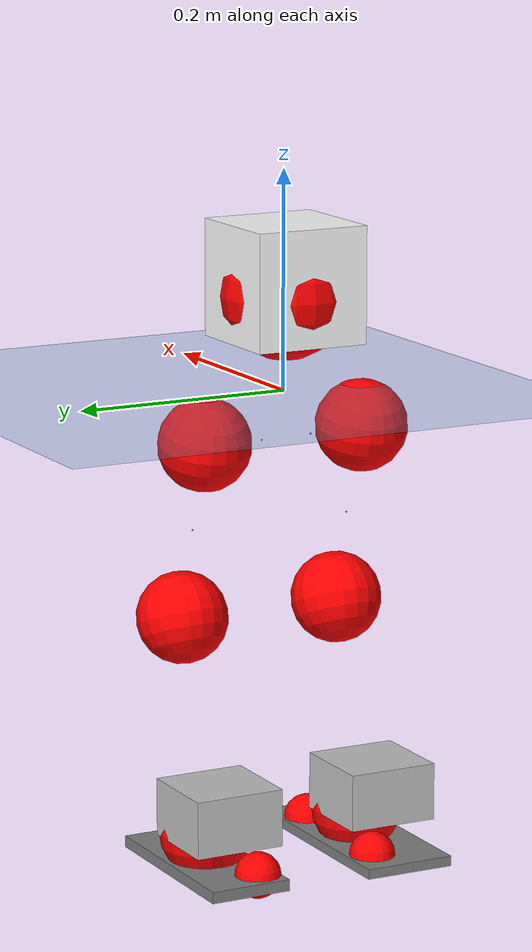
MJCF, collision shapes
<mujoco model="pi_12dof_release_v1">
  <compiler angle="radian" assetdir="assets" balanceinertia="true" inertiafromgeom="false"/>

  <option timestep="0.005" density="1.2" viscosity="2e-05"/>

  <size nkey="1"/>

  <visual>
    <quality shadowsize="8192"/>
    <map shadowclip="0.5"/>
  </visual>

  <default>
    <default class="/">
      <joint armature="0.01" damping="0.01" frictionloss="0.01"/>
      <geom contype="0" conaffinity="0" group="1" solref="-1000 -80"/>
      <site size="0.01 0.005 0.005" group="5"/>
      <general forcelimited="true" biastype="affine" gainprm="20" biasprm="0 -20 -0.5"/>
      <default class="foot">
        <geom size="0.0845 0.036 0.005" type="box" condim="6" group="4" priority="1" friction="0.9 0.2 0.2" solimp="0.015 1 0.005"/>
      </default>
      <default class="reward_collision_sphere">
        <geom group="5" rgba="1 0 0 1"/>
      </default>
    </default>
  </default>

  <asset>
    <texture type="skybox" colorspace="auto" name="//unnamed_texture_0" builtin="gradient" rgb1="0.95 0.95 0.95" rgb2="0.95 0.95 0.95" width="100" height="600"/>
    <texture type="2d" colorspace="auto" name="texplane" builtin="checker" rgb1="0.345 0.575 0.748" rgb2="0.345 0.575 0.748" markrgb="1 1 1" width="512" height="512"/>
    <material name="MatPlane" class="/" texture="texplane" texuniform="true" texrepeat="2 2" specular="0.9"/>
    <mesh name="baselink_1" class="/" file="baselink_1.STL"/>
    <mesh name="r_hip_pitch_link" class="/" file="r_hip_pitch_link.STL"/>
    <mesh name="r_hip_roll_link" class="/" file="r_hip_roll_link.STL"/>
    <mesh name="r_thigh_link" class="/" file="r_thigh_link.STL"/>
    <mesh name="r_calf_link" class="/" file="r_calf_link.STL"/>
    <mesh name="r_ankle_pitch_link" class="/" file="r_ankle_pitch_link.STL"/>
    <mesh name="r_ankle_roll_link" class="/" file="r_ankle_roll_link.STL"/>
    <mesh name="l_hip_pitch_link" class="/" file="l_hip_pitch_link.STL"/>
    <mesh name="l_hip_roll_link" class="/" file="l_hip_roll_link.STL"/>
    <mesh name="l_thigh_link" class="/" file="l_thigh_link.STL"/>
    <mesh name="l_calf_link" class="/" file="l_calf_link.STL"/>
    <mesh name="l_ankle_pitch_link" class="/" file="l_ankle_pitch_link.STL"/>
    <mesh name="l_ankle_roll_link" class="/" file="l_ankle_roll_link.STL"/>
  </asset>

  <worldbody>
    <geom name="floor" class="/" size="100 100 0.125" type="plane" group="0" material="MatPlane"/>
    <light name="toplight_shadow" class="/" pos="0 0 5" dir="0.0990148 0.0990148 -0.990148" type="directional" ambient="0.04 0.04 0.04" diffuse="0.55 0.55 0.55" specular="0.12 0.12 0.12"/>
    <light name="toplight_fill" class="/" pos="0 0 5" dir="0.0990148 0.0990148 -0.990148" type="directional" castshadow="false" ambient="0.04 0.04 0.04" diffuse="0.3 0.3 0.3" specular="0.08 0.08 0.08"/>
    <body name="trunk" pos="0.000566485 -0.00204234 -0.00266791" quat="1 -0.000135185 0.000491798 -0.000334666">
      <inertial pos="0.00334242 -0.00275256 0.0522319" quat="0.702377 0.00520339 0.00177633 0.711784" mass="2.69784" diaginertia="0.00714106 0.00789588 0.0142596"/>
      <joint name="//unnamed_joint_0" type="free"/>
      <geom name="//unnamed_geom_1" class="/" type="mesh" density="0" rgba="1 1 1 1" mesh="baselink_1"/>
      <geom name="//unnamed_geom_2" class="/" size="0.0531788 0.0531788 0.0531788" pos="0 0 0.102017" type="box" rgba="1 1 1 1"/>
      <geom name="//unnamed_geom_3" class="reward_collision_sphere" size="0.0584967" pos="0 0 0.089265"/>
      <site name="imu" class="/" pos="-0.00478786 0.0128864 -0.0101689" size="0.0106358"/>
      <camera name="track" class="/" pos="0 -1.94658 0" quat="0.707107 0.707107 0 0" mode="trackcom"/>
      <camera name="ego_camera" class="/" pos="0.0706666 0 0.229539" quat="-0.5 -0.5 0.5 0.5"/>
      <body name="r_hip_pitch_link" pos="-0.00212477 -0.024945 -0.0388172" quat="0.992215 0.000120974 -0.124536 0.000149636">
        <inertial pos="0.0021896 -0.0569679 -0.00287743" quat="-0.0232331 0.706337 -0.0276948 0.706952" mass="0.446929" diaginertia="8.04905e-05 8.6399e-05 0.000291671"/>
        <joint name="r_hip_pitch_joint" class="/" pos="0 0 0" axis="-0.00951635 -0.999949 0.00323935" stiffness="0.0102568" range="-1.75604 1.29642" armature="0.0105563" damping="0.00967455" frictionloss="0.0116798"/>
        <geom name="//unnamed_geom_4" class="/" type="mesh" density="0" rgba="0.75294 0.75294 0.75294 1" mesh="r_hip_pitch_link"/>
        <geom name="//unnamed_geom_5" class="/" size="0.000531788 0.000531788 0.000531788" type="box" rgba="0.75294 0.75294 0.75294 1"/>
        <body name="r_hip_roll_link" pos="0.000776731 -0.0523453 0.00276469" quat="1 3.62074e-05 5.37957e-06 -4.64226e-05">
          <inertial pos="-0.00234867 -0.000525397 -0.0771789" quat="0.705584 -0.0758149 -0.0823496 0.69973" mass="0.456008" diaginertia="0.000248993 0.000248598 0.000418196"/>
          <joint name="r_hip_roll_joint" class="/" pos="0 0 0" axis="-1 0.000391933 0.000259018" stiffness="0.0059976" range="-0.142087 0.551931" armature="0.0105082" damping="0.00198049" frictionloss="0.010117"/>
          <geom name="//unnamed_geom_6" class="/" type="mesh" density="0" rgba="0.75294 0.75294 0.75294 1" mesh="r_hip_roll_link"/>
          <geom name="//unnamed_geom_7" class="/" size="0.000531788 0.000531788 0.000531788" type="box" rgba="0.75294 0.75294 0.75294 1"/>
          <geom name="//unnamed_geom_8" class="reward_collision_sphere" size="0.042543"/>
          <body name="r_thigh_link" pos="0.000801886 0.00248999 -0.0883401" quat="0.999999 0.000250701 -0.000723907 -0.000813433">
            <inertial pos="0.00263275 0.00354858 -0.0622877" quat="0.735931 0.677055 -0.00111929 0.00105872" mass="0.139054" diaginertia="8.9937e-05 8.54348e-05 0.000189665"/>
            <joint name="r_thigh_joint" class="/" pos="0 0 0" axis="0.000926488 -0.00632756 -0.99998" stiffness="0.00892831" range="-0.30618 0.642635" armature="0.0102227" damping="0.0201762" frictionloss="0.0110701"/>
            <geom name="//unnamed_geom_9" class="/" type="mesh" density="0" rgba="0.75294 0.75294 0.75294 1" mesh="r_thigh_link"/>
            <geom name="//unnamed_geom_10" class="/" size="0.000531788 0.000531788 0.000531788" type="box" rgba="0.75294 0.75294 0.75294 1"/>
            <body name="r_calf_link" pos="0.00102927 -0.00229338 -0.0888276" quat="0.947649 0.00069033 0.319312 -0.00123665">
              <inertial pos="0.00110509 0.00136937 -0.0892448" quat="0.999962 -0.00242274 -0.00340876 0.00761915" mass="0.977075" diaginertia="0.00266231 0.00307851 0.00058582"/>
              <joint name="r_calf_joint" class="/" pos="0 0 0" axis="0.00046532 -0.999986 -0.00533724" range="-1.63488 0.634796" armature="0.00981114" damping="0.0129988" frictionloss="0.00994167"/>
              <geom name="//unnamed_geom_11" class="/" type="mesh" density="0" rgba="0.75294 0.75294 0.75294 1" mesh="r_calf_link"/>
              <geom name="//unnamed_geom_12" class="/" size="0.000531788 0.000531788 0.000531788" type="box" rgba="0.75294 0.75294 0.75294 1"/>
              <geom name="//unnamed_geom_13" class="reward_collision_sphere" size="0.042543"/>
              <body name="r_ankle_pitch_link" pos="0.000967435 -0.00127232 -0.178123" quat="0.980082 1.36578e-05 -0.198591 0.000107073">
                <inertial pos="0.00256578 0.00473698 -0.00241367" quat="0.00274627 0.706522 -0.00379614 0.707676" mass="0.208365" diaginertia="0.000220228 0.000181034 0.000384741"/>
                <joint name="r_ankle_pitch_joint" class="/" pos="0 0 0" axis="0.00257539 -0.999985 0.00481616" stiffness="0.00415301" range="-1.32244 0.530915" armature="0.010335" damping="0.0130982" frictionloss="0.00948897"/>
                <geom name="//unnamed_geom_14" class="/" type="mesh" density="0" rgba="0.75294 0.75294 0.75294 1" mesh="r_ankle_pitch_link"/>
                <geom name="//unnamed_geom_15" class="/" size="0.0414794 0.042543 0.0265894" type="box" rgba="0.75294 0.75294 0.75294 1"/>
                <body name="r_ankle_roll_link" pos="0.0732193 0.00122022 -0.000473739" quat="1 -1.03347e-06 1.78626e-07 6.74513e-09">
                  <inertial pos="-0.0195599 -0.000130767 -0.0205654" quat="0.560678 0.431869 0.433696 0.557707" mass="0.648243" diaginertia="0.000860591 0.000891431 0.000957045"/>
                  <joint name="r_ankle_roll_joint" class="/" pos="0 0 0" axis="-0.999938 -0.00749387 -0.00820608" range="-0.141377 0.131114" armature="0.011165" damping="0" frictionloss="0.0102265"/>
                  <geom name="//unnamed_geom_16" class="/" type="mesh" density="0" rgba="0.75294 0.75294 0.75294 1" mesh="r_ankle_roll_link"/>
                  <geom name="//unnamed_geom_17" class="/" type="mesh" rgba="0.75294 0.75294 0.75294 1" mesh="r_ankle_roll_link"/>
                  <geom name="right_foot" class="foot" size="0.100967 0.0428958 0.00467887" pos="-0.0480533 0 -0.0561094"/>
                  <geom name="//unnamed_geom_19" class="reward_collision_sphere" size="0.042543" pos="-0.0471111 0 -0.0255043"/>
                  <geom name="//unnamed_geom_20" class="reward_collision_sphere" size="0.0212715" pos="0.0141333 0.0194658 -0.0510086"/>
                  <geom name="//unnamed_geom_21" class="reward_collision_sphere" size="0.0212715" pos="-0.113067 0.0194658 -0.0510086"/>
                  <site name="right_foot" class="foot" pos="-0.0480533 0 -0.0561094" size="0.0106358"/>
                </body>
              </body>
            </body>
          </body>
        </body>
      </body>
      <body name="l_hip_pitch_link" pos="-0.00199683 0.0246766 -0.0398232" quat="0.992065 -0.000202831 -0.125723 -0.000333151">
        <inertial pos="0.000220361 0.0505784 -0.000907915" quat="-0.0385275 0.705438 0.0296175 0.707104" mass="0.472561" diaginertia="9.42066e-05 9.28347e-05 0.000327843"/>
        <joint name="l_hip_pitch_joint" class="/" pos="0 0 0" axis="-0.00100634 0.999975 -0.00697744" range="-1.19553 1.7305" armature="0.0114931" damping="0.00159021" frictionloss="0.0120907"/>
        <geom name="//unnamed_geom_22" class="/" type="mesh" density="0" rgba="0.75294 0.75294 0.75294 1" mesh="l_hip_pitch_link"/>
        <geom name="//unnamed_geom_23" class="/" size="0.000531788 0.000531788 0.000531788" type="box" rgba="0.75294 0.75294 0.75294 1"/>
        <body name="l_hip_roll_link" pos="-9.05008e-05 0.0572455 0.00152478" quat="1 8.2592e-05 -8.9904e-07 -5.25952e-06">
          <inertial pos="-0.00182213 -0.000283346 -0.0792902" quat="0.700355 -0.0767712 -0.0796386 0.705171" mass="0.460766" diaginertia="0.000253458 0.000237514 0.000445557"/>
          <joint name="l_hip_roll_joint" class="/" pos="0 0 0" axis="-0.999925 0.00696771 0.0101212" range="-0.546554 0.0620048" armature="0.0114943" damping="0.0160281" frictionloss="0.0121017"/>
          <geom name="//unnamed_geom_24" class="/" type="mesh" density="0" rgba="0.75294 0.75294 0.75294 1" mesh="l_hip_roll_link"/>
          <geom name="//unnamed_geom_25" class="/" size="0.000531788 0.000531788 0.000531788" type="box" rgba="0.75294 0.75294 0.75294 1"/>
          <geom name="//unnamed_geom_26" class="reward_collision_sphere" size="0.042543"/>
          <body name="l_thigh_link" pos="0.00144414 0.00123205 -0.0858553" quat="1 -0.000285533 0.000371506 -2.00705e-05">
            <inertial pos="0.000741487 -0.00145626 -0.0579786" quat="0.676333 0.736593 0.00152994 -0.00131877" mass="0.136579" diaginertia="9.24023e-05 8.14382e-05 0.000196771"/>
            <joint name="l_thigh_joint" class="/" pos="0 0 0" axis="0.00184966 -0.00581098 -0.999981" range="-0.594319 0.287592" armature="0.00907214" damping="0.00914217" frictionloss="0.0104435"/>
            <geom name="//unnamed_geom_27" class="/" type="mesh" density="0" rgba="0.75294 0.75294 0.75294 1" mesh="l_thigh_link"/>
            <geom name="//unnamed_geom_28" class="/" size="0.000531788 0.000531788 0.000531788" type="box" rgba="0.75294 0.75294 0.75294 1"/>
            <body name="l_calf_link" pos="-0.000143434 -0.000229542 -0.0886243" quat="0.947386 -0.000461941 0.320092 0.000230669">
              <inertial pos="0.000465147 0.00493384 -0.0894136" quat="0.999979 0.00348175 -0.000494828 0.00543378" mass="0.986005" diaginertia="0.00272813 0.00318145 0.000574846"/>
              <joint name="l_calf_joint" class="/" pos="0 0 0" axis="0.00149681 0.999998 0.00090365" range="-0.669803 1.66097" armature="0.0111401" damping="0.0118565" frictionloss="0.0102548"/>
              <geom name="//unnamed_geom_29" class="/" type="mesh" density="0" rgba="0.75294 0.75294 0.75294 1" mesh="l_calf_link"/>
              <geom name="//unnamed_geom_30" class="/" size="0.000531788 0.000531788 0.000531788" type="box" rgba="0.75294 0.75294 0.75294 1"/>
              <geom name="//unnamed_geom_31" class="reward_collision_sphere" size="0.042543"/>
              <body name="l_ankle_pitch_link" pos="-0.000386543 -0.00118409 -0.179862" quat="0.9798 -0.000311252 -0.19998 -0.000316227">
                <inertial pos="0.00435684 -0.00360856 -0.000928192" quat="-0.00211147 0.706978 0.00247999 0.707228" mass="0.197678" diaginertia="0.000213496 0.000187682 0.000389928"/>
                <joint name="l_ankle_pitch_joint" class="/" pos="0 0 0" axis="0.00186762 0.999988 0.00448306" range="-0.532123 1.29949" armature="0.0104878" damping="0.0144948" frictionloss="0.0120917"/>
                <geom name="//unnamed_geom_32" class="/" type="mesh" density="0" rgba="0.75294 0.75294 0.75294 1" mesh="l_ankle_pitch_link"/>
                <geom name="//unnamed_geom_33" class="/" size="0.0414794 0.042543 0.0265894" type="box" rgba="0.75294 0.75294 0.75294 1"/>
                <body name="l_ankle_roll_link" pos="0.0731351 0.00118497 0.000552868" quat="1 0.000408316 -8.52528e-05 0.00050092">
                  <inertial pos="-0.0240583 0.00124901 -0.0157547" quat="0.559699 0.433752 0.443179 0.549716" mass="0.620719" diaginertia="0.00087759 0.000888876 0.000992226"/>
                  <joint name="l_ankle_roll_joint" class="/" pos="0 0 0" axis="-0.999978 0.00546421 -0.00383407" range="-0.196922 0.148034" armature="0.0102135" damping="0.0232176" frictionloss="0.0116144"/>
                  <geom name="//unnamed_geom_34" class="/" type="mesh" density="0" rgba="0.75294 0.75294 0.75294 1" mesh="l_ankle_roll_link"/>
                  <geom name="//unnamed_geom_35" class="/" type="mesh" rgba="0.75294 0.75294 0.75294 1" mesh="l_ankle_roll_link"/>
                  <geom name="left_foot" class="foot" size="0.0897805 0.0383002 0.00536429" pos="-0.0480533 0 -0.0561094"/>
                  <geom name="//unnamed_geom_37" class="reward_collision_sphere" size="0.042543" pos="-0.0471111 0 -0.0255043"/>
                  <geom name="//unnamed_geom_38" class="reward_collision_sphere" size="0.0212715" pos="0.0141333 -0.0194658 -0.0510086"/>
                  <geom name="//unnamed_geom_39" class="reward_collision_sphere" size="0.0212715" pos="-0.113067 -0.0194658 -0.0510086"/>
                  <site name="left_foot" class="foot" pos="-0.0480533 0 -0.0561094" size="0.0106358"/>
                </body>
              </body>
            </body>
          </body>
        </body>
      </body>
    </body>
  </worldbody>

  <contact>
    <pair class="/" geom1="floor" geom2="right_foot" name="//unnamed_contact_1"/>
    <pair class="/" geom1="floor" geom2="left_foot" name="//unnamed_contact_0"/>
  </contact>

  <actuator>
    <general name="r_hip_pitch_joint" class="/" joint="r_hip_pitch_joint" forcerange="-21.2066 21.2066" gainprm="21.6007" biasprm="0 -21.6007 -0.494684"/>
    <general name="r_hip_roll_joint" class="/" joint="r_hip_roll_joint" forcerange="-22.0291 22.0291" gainprm="21.6007" biasprm="0 -21.6007 -0.494684"/>
    <general name="r_thigh_joint" class="/" joint="r_thigh_joint" forcerange="-22.151 22.151" gainprm="21.6007" biasprm="0 -21.6007 -0.494684"/>
    <general name="r_calf_joint" class="/" joint="r_calf_joint" forcerange="-21.4747 21.4747" gainprm="21.6007" biasprm="0 -21.6007 -0.494684"/>
    <general name="r_ankle_pitch_joint" class="/" joint="r_ankle_pitch_joint" forcerange="-23.357 23.357" gainprm="21.6007" biasprm="0 -21.6007 -0.494684"/>
    <general name="r_ankle_roll_joint" class="/" joint="r_ankle_roll_joint" forcerange="-21.3567 21.3567" gainprm="21.6007" biasprm="0 -21.6007 -0.494684"/>
    <general name="l_hip_pitch_joint" class="/" joint="l_hip_pitch_joint" forcerange="-23.0323 23.0323" gainprm="21.6007" biasprm="0 -21.6007 -0.494684"/>
    <general name="l_hip_roll_joint" class="/" joint="l_hip_roll_joint" forcerange="-20.0878 20.0878" gainprm="21.6007" biasprm="0 -21.6007 -0.494684"/>
    <general name="l_thigh_joint" class="/" joint="l_thigh_joint" forcerange="-22.1955 22.1955" gainprm="21.6007" biasprm="0 -21.6007 -0.494684"/>
    <general name="l_calf_joint" class="/" joint="l_calf_joint" forcerange="-21.1847 21.1847" gainprm="21.6007" biasprm="0 -21.6007 -0.494684"/>
    <general name="l_ankle_pitch_joint" class="/" joint="l_ankle_pitch_joint" forcerange="-22.1341 22.1341" gainprm="21.6007" biasprm="0 -21.6007 -0.494684"/>
    <general name="l_ankle_roll_joint" class="/" joint="l_ankle_roll_joint" forcerange="-20.8862 20.8862" gainprm="21.6007" biasprm="0 -21.6007 -0.494684"/>
  </actuator>

  <sensor>
    <gyro site="imu" name="imu_angular_velocity"/>
    <velocimeter site="imu" name="imu_linear_velocity"/>
    <framelinvel objtype="site" objname="left_foot" name="left_foot_global_linear_velocity"/>
    <framelinvel objtype="site" objname="right_foot" name="right_foot_global_linear_velocity"/>
  </sensor>

  <keyframe>
    <key name="home" qpos="0 0 0.291 1 0 0 0 0.4 0 0 -0.8 0.4 0 -0.4 0 0 0.8 -0.4 0"/>
  </keyframe>
</mujoco>
